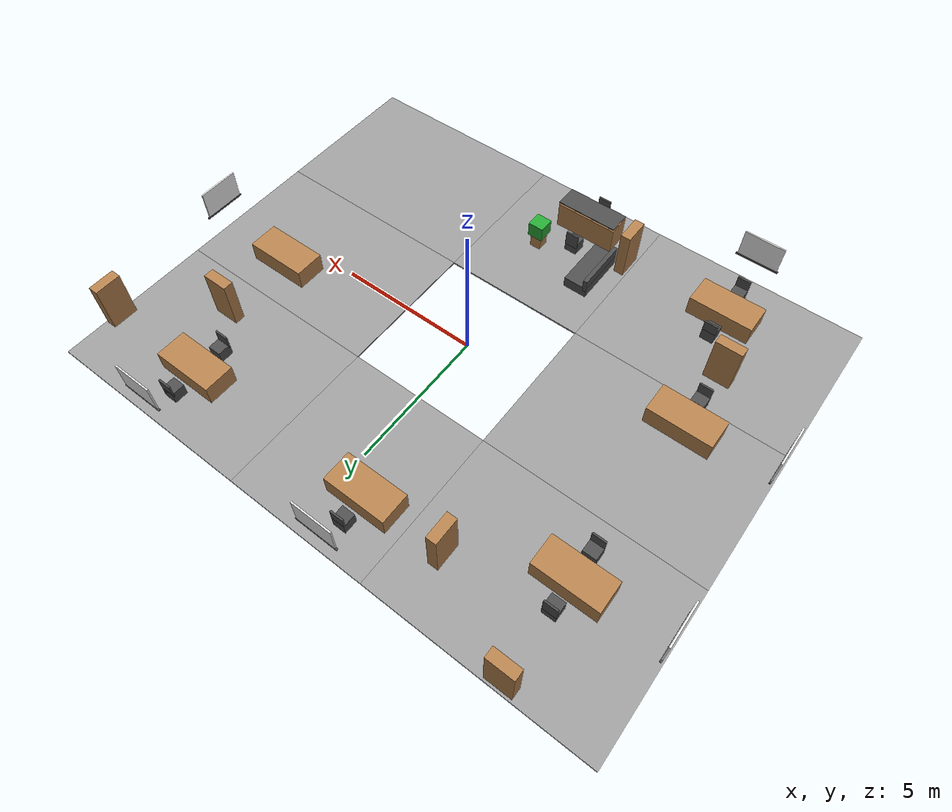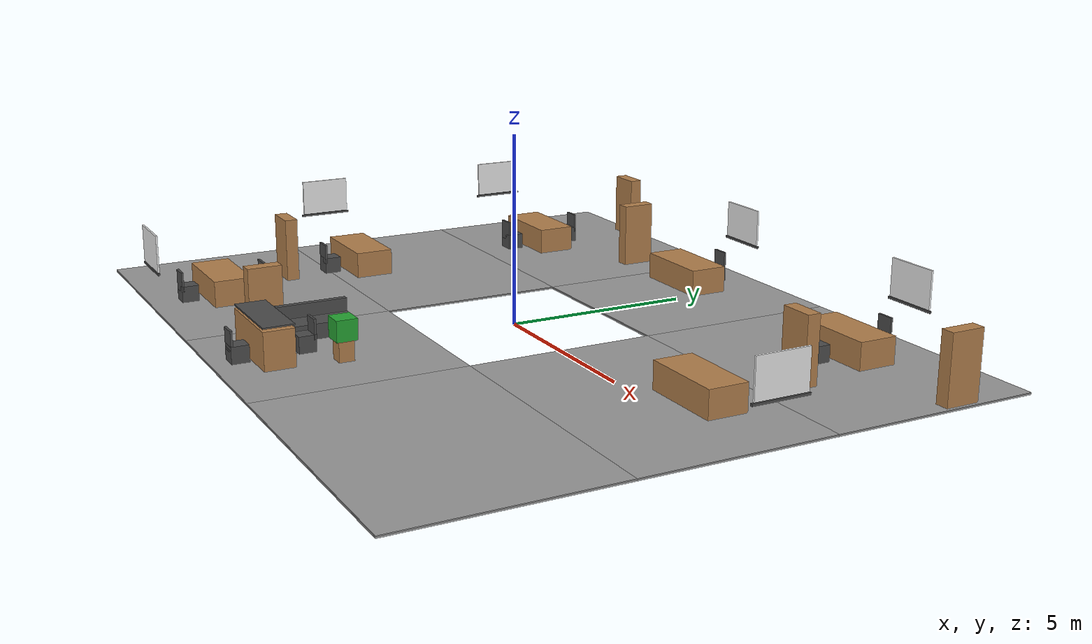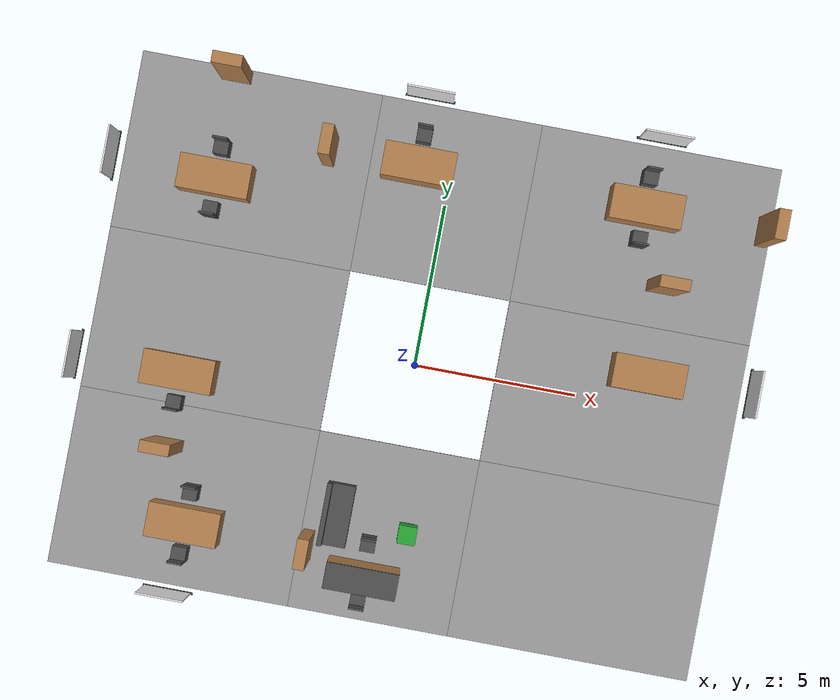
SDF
<sdf version="1.7">
 <world name="default">
  <model name="building_L1">
   <static>1</static>
   <link name="floor0_0">
    <pose>-6.25 -5.25 0 0 0 0</pose>
    <collision name="c"><geometry><box><size>7.5 5.5 0.04</size></box></geometry></collision>
    <visual name="v">
     <geometry><box><size>7.5 5.5 0.04</size></box></geometry>
     <material>
      <script><uri>file://media/materials/scripts/Gazebo.material</uri><name>Gazebo/Grey</name></script>
     </material>
    </visual>
   </link>
   <link name="floor0c_0">
    <pose>-6.25 -5.25 0.03 0 0 0</pose>
    <collision name="c"><geometry><box><size>7.5 5.5 0.02</size></box></geometry></collision>
    <visual name="v">
     <geometry><box><size>7.5 5.5 0.02</size></box></geometry>
     <material>
      <script><uri>file://media/materials/scripts/Gazebo.material</uri><name>Gazebo/Grey</name></script>
     </material>
    </visual>
   </link>
   <link name="floor0_1">
    <pose>-6.25 0 0 0 0 0</pose>
    <collision name="c"><geometry><box><size>7.5 5 0.04</size></box></geometry></collision>
    <visual name="v">
     <geometry><box><size>7.5 5 0.04</size></box></geometry>
     <material>
      <script><uri>file://media/materials/scripts/Gazebo.material</uri><name>Gazebo/Grey</name></script>
     </material>
    </visual>
   </link>
   <link name="floor0c_1">
    <pose>-6.25 0 0.03 0 0 0</pose>
    <collision name="c"><geometry><box><size>7.5 5 0.02</size></box></geometry></collision>
    <visual name="v">
     <geometry><box><size>7.5 5 0.02</size></box></geometry>
     <material>
      <script><uri>file://media/materials/scripts/Gazebo.material</uri><name>Gazebo/Grey</name></script>
     </material>
    </visual>
   </link>
   <link name="floor0_2">
    <pose>-6.25 5.25 0 0 0 0</pose>
    <collision name="c"><geometry><box><size>7.5 5.5 0.04</size></box></geometry></collision>
    <visual name="v">
     <geometry><box><size>7.5 5.5 0.04</size></box></geometry>
     <material>
      <script><uri>file://media/materials/scripts/Gazebo.material</uri><name>Gazebo/Grey</name></script>
     </material>
    </visual>
   </link>
   <link name="floor0c_2">
    <pose>-6.25 5.25 0.03 0 0 0</pose>
    <collision name="c"><geometry><box><size>7.5 5.5 0.02</size></box></geometry></collision>
    <visual name="v">
     <geometry><box><size>7.5 5.5 0.02</size></box></geometry>
     <material>
      <script><uri>file://media/materials/scripts/Gazebo.material</uri><name>Gazebo/Grey</name></script>
     </material>
    </visual>
   </link>
   <link name="floor0_3">
    <pose>0 -5.25 0 0 0 0</pose>
    <collision name="c"><geometry><box><size>5 5.5 0.04</size></box></geometry></collision>
    <visual name="v">
     <geometry><box><size>5 5.5 0.04</size></box></geometry>
     <material>
      <script><uri>file://media/materials/scripts/Gazebo.material</uri><name>Gazebo/Grey</name></script>
     </material>
    </visual>
   </link>
   <link name="floor0c_3">
    <pose>0 -5.25 0.03 0 0 0</pose>
    <collision name="c"><geometry><box><size>5 5.5 0.02</size></box></geometry></collision>
    <visual name="v">
     <geometry><box><size>5 5.5 0.02</size></box></geometry>
     <material>
      <script><uri>file://media/materials/scripts/Gazebo.material</uri><name>Gazebo/Grey</name></script>
     </material>
    </visual>
   </link>
   <link name="floor0_4">
    <pose>0 5.25 0 0 0 0</pose>
    <collision name="c"><geometry><box><size>5 5.5 0.04</size></box></geometry></collision>
    <visual name="v">
     <geometry><box><size>5 5.5 0.04</size></box></geometry>
     <material>
      <script><uri>file://media/materials/scripts/Gazebo.material</uri><name>Gazebo/Grey</name></script>
     </material>
    </visual>
   </link>
   <link name="floor0c_4">
    <pose>0 5.25 0.03 0 0 0</pose>
    <collision name="c"><geometry><box><size>5 5.5 0.02</size></box></geometry></collision>
    <visual name="v">
     <geometry><box><size>5 5.5 0.02</size></box></geometry>
     <material>
      <script><uri>file://media/materials/scripts/Gazebo.material</uri><name>Gazebo/Grey</name></script>
     </material>
    </visual>
   </link>
   <link name="floor0_5">
    <pose>6.25 -5.25 0 0 0 0</pose>
    <collision name="c"><geometry><box><size>7.5 5.5 0.04</size></box></geometry></collision>
    <visual name="v">
     <geometry><box><size>7.5 5.5 0.04</size></box></geometry>
     <material>
      <script><uri>file://media/materials/scripts/Gazebo.material</uri><name>Gazebo/Grey</name></script>
     </material>
    </visual>
   </link>
   <link name="floor0c_5">
    <pose>6.25 -5.25 0.03 0 0 0</pose>
    <collision name="c"><geometry><box><size>7.5 5.5 0.02</size></box></geometry></collision>
    <visual name="v">
     <geometry><box><size>7.5 5.5 0.02</size></box></geometry>
     <material>
      <script><uri>file://media/materials/scripts/Gazebo.material</uri><name>Gazebo/Grey</name></script>
     </material>
    </visual>
   </link>
   <link name="floor0_6">
    <pose>6.25 0 0 0 0 0</pose>
    <collision name="c"><geometry><box><size>7.5 5 0.04</size></box></geometry></collision>
    <visual name="v">
     <geometry><box><size>7.5 5 0.04</size></box></geometry>
     <material>
      <script><uri>file://media/materials/scripts/Gazebo.material</uri><name>Gazebo/Grey</name></script>
     </material>
    </visual>
   </link>
   <link name="floor0c_6">
    <pose>6.25 0 0.03 0 0 0</pose>
    <collision name="c"><geometry><box><size>7.5 5 0.02</size></box></geometry></collision>
    <visual name="v">
     <geometry><box><size>7.5 5 0.02</size></box></geometry>
     <material>
      <script><uri>file://media/materials/scripts/Gazebo.material</uri><name>Gazebo/Grey</name></script>
     </material>
    </visual>
   </link>
   <link name="floor0_7">
    <pose>6.25 5.25 0 0 0 0</pose>
    <collision name="c"><geometry><box><size>7.5 5.5 0.04</size></box></geometry></collision>
    <visual name="v">
     <geometry><box><size>7.5 5.5 0.04</size></box></geometry>
     <material>
      <script><uri>file://media/materials/scripts/Gazebo.material</uri><name>Gazebo/Grey</name></script>
     </material>
    </visual>
   </link>
   <link name="floor0c_7">
    <pose>6.25 5.25 0.03 0 0 0</pose>
    <collision name="c"><geometry><box><size>7.5 5.5 0.02</size></box></geometry></collision>
    <visual name="v">
     <geometry><box><size>7.5 5.5 0.02</size></box></geometry>
     <material>
      <script><uri>file://media/materials/scripts/Gazebo.material</uri><name>Gazebo/Grey</name></script>
     </material>
    </visual>
   </link>
   <link name="f0_N1mtt">
    <pose>-1 6 0.38 0 0 0</pose>
    <collision name="c"><geometry><box><size>2.2 1.05 0.76</size></box></geometry></collision>
    <visual name="v">
     <geometry><box><size>2.2 1.05 0.76</size></box></geometry>
     <material>
      <script><uri>file://media/materials/scripts/Gazebo.material</uri><name>Gazebo/Wood</name></script>
     </material>
    </visual>
   </link>
   <link name="f0_N1c3s">
    <pose>-1 6.95 0.24 0 0 0</pose>
    <collision name="c"><geometry><box><size>0.46 0.46 0.48</size></box></geometry></collision>
    <visual name="v">
     <geometry><box><size>0.46 0.46 0.48</size></box></geometry>
     <material>
      <script><uri>file://media/materials/scripts/Gazebo.material</uri><name>Gazebo/DarkGrey</name></script>
     </material>
    </visual>
   </link>
   <link name="f0_N1c3b">
    <pose>-1 7.15 0.6 0 0 0</pose>
    <collision name="c"><geometry><box><size>0.46 0.06 0.55</size></box></geometry></collision>
    <visual name="v">
     <geometry><box><size>0.46 0.06 0.55</size></box></geometry>
     <material>
      <script><uri>file://media/materials/scripts/Gazebo.material</uri><name>Gazebo/DarkGrey</name></script>
     </material>
    </visual>
   </link>
   <link name="f0_N1bsf">
    <pose>-3.75 6 0.9 0 0 0</pose>
    <collision name="c"><geometry><box><size>0.35 0.9 1.8</size></box></geometry></collision>
    <visual name="v">
     <geometry><box><size>0.35 0.9 1.8</size></box></geometry>
     <material>
      <script><uri>file://media/materials/scripts/Gazebo.material</uri><name>Gazebo/Wood</name></script>
     </material>
    </visual>
   </link>
   <link name="f0_N1bsb0">
    <pose>-3.75 6 0.45 0 0 0</pose>
    <collision name="c"><geometry><box><size>0.28 0.8 0.32</size></box></geometry></collision>
    <visual name="v">
     <geometry><box><size>0.28 0.8 0.32</size></box></geometry>
     <material>
      <script><uri>file://media/materials/scripts/Gazebo.material</uri><name>Gazebo/Grey</name></script>
     </material>
    </visual>
   </link>
   <link name="f0_N1bsb1">
    <pose>-3.75 6 0.95 0 0 0</pose>
    <collision name="c"><geometry><box><size>0.28 0.8 0.32</size></box></geometry></collision>
    <visual name="v">
     <geometry><box><size>0.28 0.8 0.32</size></box></geometry>
     <material>
      <script><uri>file://media/materials/scripts/Gazebo.material</uri><name>Gazebo/Grey</name></script>
     </material>
    </visual>
   </link>
   <link name="f0_N1bsb2">
    <pose>-3.75 6 1.45 0 0 0</pose>
    <collision name="c"><geometry><box><size>0.28 0.8 0.32</size></box></geometry></collision>
    <visual name="v">
     <geometry><box><size>0.28 0.8 0.32</size></box></geometry>
     <material>
      <script><uri>file://media/materials/scripts/Gazebo.material</uri><name>Gazebo/Grey</name></script>
     </material>
    </visual>
   </link>
   <link name="f0_N1wbw">
    <pose>-1 7.895 1.6 0 0 0</pose>
    <collision name="c"><geometry><box><size>1.4 0.05 1</size></box></geometry></collision>
    <visual name="v">
     <geometry><box><size>1.4 0.05 1</size></box></geometry>
     <material>
      <script><uri>file://media/materials/scripts/Gazebo.material</uri><name>Gazebo/White</name></script>
     </material>
    </visual>
   </link>
   <link name="f0_N1wbf">
    <pose>-1 7.895 1.05 0 0 0</pose>
    <collision name="c"><geometry><box><size>1.5 0.06 0.06</size></box></geometry></collision>
    <visual name="v">
     <geometry><box><size>1.5 0.06 0.06</size></box></geometry>
     <material>
      <script><uri>file://media/materials/scripts/Gazebo.material</uri><name>Gazebo/DarkGrey</name></script>
     </material>
    </visual>
   </link>
   <link name="f0_N2mtt">
    <pose>6 6 0.38 0 0 0</pose>
    <collision name="c"><geometry><box><size>2.2 1.05 0.76</size></box></geometry></collision>
    <visual name="v">
     <geometry><box><size>2.2 1.05 0.76</size></box></geometry>
     <material>
      <script><uri>file://media/materials/scripts/Gazebo.material</uri><name>Gazebo/Wood</name></script>
     </material>
    </visual>
   </link>
   <link name="f0_N2c2s">
    <pose>6 5.05 0.24 0 0 0</pose>
    <collision name="c"><geometry><box><size>0.46 0.46 0.48</size></box></geometry></collision>
    <visual name="v">
     <geometry><box><size>0.46 0.46 0.48</size></box></geometry>
     <material>
      <script><uri>file://media/materials/scripts/Gazebo.material</uri><name>Gazebo/DarkGrey</name></script>
     </material>
    </visual>
   </link>
   <link name="f0_N2c2b">
    <pose>6 4.85 0.6 0 0 0</pose>
    <collision name="c"><geometry><box><size>0.46 0.06 0.55</size></box></geometry></collision>
    <visual name="v">
     <geometry><box><size>0.46 0.06 0.55</size></box></geometry>
     <material>
      <script><uri>file://media/materials/scripts/Gazebo.material</uri><name>Gazebo/DarkGrey</name></script>
     </material>
    </visual>
   </link>
   <link name="f0_N2c3s">
    <pose>6 6.95 0.24 0 0 0</pose>
    <collision name="c"><geometry><box><size>0.46 0.46 0.48</size></box></geometry></collision>
    <visual name="v">
     <geometry><box><size>0.46 0.46 0.48</size></box></geometry>
     <material>
      <script><uri>file://media/materials/scripts/Gazebo.material</uri><name>Gazebo/DarkGrey</name></script>
     </material>
    </visual>
   </link>
   <link name="f0_N2c3b">
    <pose>6 7.15 0.6 0 0 0</pose>
    <collision name="c"><geometry><box><size>0.46 0.06 0.55</size></box></geometry></collision>
    <visual name="v">
     <geometry><box><size>0.46 0.06 0.55</size></box></geometry>
     <material>
      <script><uri>file://media/materials/scripts/Gazebo.material</uri><name>Gazebo/DarkGrey</name></script>
     </material>
    </visual>
   </link>
   <link name="f0_N2bsf">
    <pose>9.75 6 0.9 0 0 0</pose>
    <collision name="c"><geometry><box><size>0.35 0.9 1.8</size></box></geometry></collision>
    <visual name="v">
     <geometry><box><size>0.35 0.9 1.8</size></box></geometry>
     <material>
      <script><uri>file://media/materials/scripts/Gazebo.material</uri><name>Gazebo/Wood</name></script>
     </material>
    </visual>
   </link>
   <link name="f0_N2bsb0">
    <pose>9.75 6 0.45 0 0 0</pose>
    <collision name="c"><geometry><box><size>0.28 0.8 0.32</size></box></geometry></collision>
    <visual name="v">
     <geometry><box><size>0.28 0.8 0.32</size></box></geometry>
     <material>
      <script><uri>file://media/materials/scripts/Gazebo.material</uri><name>Gazebo/Grey</name></script>
     </material>
    </visual>
   </link>
   <link name="f0_N2bsb1">
    <pose>9.75 6 0.95 0 0 0</pose>
    <collision name="c"><geometry><box><size>0.28 0.8 0.32</size></box></geometry></collision>
    <visual name="v">
     <geometry><box><size>0.28 0.8 0.32</size></box></geometry>
     <material>
      <script><uri>file://media/materials/scripts/Gazebo.material</uri><name>Gazebo/Grey</name></script>
     </material>
    </visual>
   </link>
   <link name="f0_N2bsb2">
    <pose>9.75 6 1.45 0 0 0</pose>
    <collision name="c"><geometry><box><size>0.28 0.8 0.32</size></box></geometry></collision>
    <visual name="v">
     <geometry><box><size>0.28 0.8 0.32</size></box></geometry>
     <material>
      <script><uri>file://media/materials/scripts/Gazebo.material</uri><name>Gazebo/Grey</name></script>
     </material>
    </visual>
   </link>
   <link name="f0_N2wbw">
    <pose>6 7.895 1.6 0 0 0</pose>
    <collision name="c"><geometry><box><size>1.4 0.05 1</size></box></geometry></collision>
    <visual name="v">
     <geometry><box><size>1.4 0.05 1</size></box></geometry>
     <material>
      <script><uri>file://media/materials/scripts/Gazebo.material</uri><name>Gazebo/White</name></script>
     </material>
    </visual>
   </link>
   <link name="f0_N2wbf">
    <pose>6 7.895 1.05 0 0 0</pose>
    <collision name="c"><geometry><box><size>1.5 0.06 0.06</size></box></geometry></collision>
    <visual name="v">
     <geometry><box><size>1.5 0.06 0.06</size></box></geometry>
     <material>
      <script><uri>file://media/materials/scripts/Gazebo.material</uri><name>Gazebo/DarkGrey</name></script>
     </material>
    </visual>
   </link>
   <link name="f0_W1mtt">
    <pose>-7 4.5 0.38 0 0 0</pose>
    <collision name="c"><geometry><box><size>2.2 1.05 0.76</size></box></geometry></collision>
    <visual name="v">
     <geometry><box><size>2.2 1.05 0.76</size></box></geometry>
     <material>
      <script><uri>file://media/materials/scripts/Gazebo.material</uri><name>Gazebo/Wood</name></script>
     </material>
    </visual>
   </link>
   <link name="f0_W1c2s">
    <pose>-7 3.55 0.24 0 0 0</pose>
    <collision name="c"><geometry><box><size>0.46 0.46 0.48</size></box></geometry></collision>
    <visual name="v">
     <geometry><box><size>0.46 0.46 0.48</size></box></geometry>
     <material>
      <script><uri>file://media/materials/scripts/Gazebo.material</uri><name>Gazebo/DarkGrey</name></script>
     </material>
    </visual>
   </link>
   <link name="f0_W1c2b">
    <pose>-7 3.35 0.6 0 0 0</pose>
    <collision name="c"><geometry><box><size>0.46 0.06 0.55</size></box></geometry></collision>
    <visual name="v">
     <geometry><box><size>0.46 0.06 0.55</size></box></geometry>
     <material>
      <script><uri>file://media/materials/scripts/Gazebo.material</uri><name>Gazebo/DarkGrey</name></script>
     </material>
    </visual>
   </link>
   <link name="f0_W1c3s">
    <pose>-7 5.45 0.24 0 0 0</pose>
    <collision name="c"><geometry><box><size>0.46 0.46 0.48</size></box></geometry></collision>
    <visual name="v">
     <geometry><box><size>0.46 0.46 0.48</size></box></geometry>
     <material>
      <script><uri>file://media/materials/scripts/Gazebo.material</uri><name>Gazebo/DarkGrey</name></script>
     </material>
    </visual>
   </link>
   <link name="f0_W1c3b">
    <pose>-7 5.65 0.6 0 0 0</pose>
    <collision name="c"><geometry><box><size>0.46 0.06 0.55</size></box></geometry></collision>
    <visual name="v">
     <geometry><box><size>0.46 0.06 0.55</size></box></geometry>
     <material>
      <script><uri>file://media/materials/scripts/Gazebo.material</uri><name>Gazebo/DarkGrey</name></script>
     </material>
    </visual>
   </link>
   <link name="f0_W1bsf">
    <pose>-7 7.75 0.9 0 0 0</pose>
    <collision name="c"><geometry><box><size>0.9 0.35 1.8</size></box></geometry></collision>
    <visual name="v">
     <geometry><box><size>0.9 0.35 1.8</size></box></geometry>
     <material>
      <script><uri>file://media/materials/scripts/Gazebo.material</uri><name>Gazebo/Wood</name></script>
     </material>
    </visual>
   </link>
   <link name="f0_W1bsb0">
    <pose>-7 7.75 0.45 0 0 0</pose>
    <collision name="c"><geometry><box><size>0.8 0.28 0.32</size></box></geometry></collision>
    <visual name="v">
     <geometry><box><size>0.8 0.28 0.32</size></box></geometry>
     <material>
      <script><uri>file://media/materials/scripts/Gazebo.material</uri><name>Gazebo/Grey</name></script>
     </material>
    </visual>
   </link>
   <link name="f0_W1bsb1">
    <pose>-7 7.75 0.95 0 0 0</pose>
    <collision name="c"><geometry><box><size>0.8 0.28 0.32</size></box></geometry></collision>
    <visual name="v">
     <geometry><box><size>0.8 0.28 0.32</size></box></geometry>
     <material>
      <script><uri>file://media/materials/scripts/Gazebo.material</uri><name>Gazebo/Grey</name></script>
     </material>
    </visual>
   </link>
   <link name="f0_W1bsb2">
    <pose>-7 7.75 1.45 0 0 0</pose>
    <collision name="c"><geometry><box><size>0.8 0.28 0.32</size></box></geometry></collision>
    <visual name="v">
     <geometry><box><size>0.8 0.28 0.32</size></box></geometry>
     <material>
      <script><uri>file://media/materials/scripts/Gazebo.material</uri><name>Gazebo/Grey</name></script>
     </material>
    </visual>
   </link>
   <link name="f0_W1wbw">
    <pose>-9.895 4.5 1.6 0 0 0</pose>
    <collision name="c"><geometry><box><size>0.05 1.4 1</size></box></geometry></collision>
    <visual name="v">
     <geometry><box><size>0.05 1.4 1</size></box></geometry>
     <material>
      <script><uri>file://media/materials/scripts/Gazebo.material</uri><name>Gazebo/White</name></script>
     </material>
    </visual>
   </link>
   <link name="f0_W1wbf">
    <pose>-9.895 4.5 1.05 0 0 0</pose>
    <collision name="c"><geometry><box><size>0.06 1.5 0.06</size></box></geometry></collision>
    <visual name="v">
     <geometry><box><size>0.06 1.5 0.06</size></box></geometry>
     <material>
      <script><uri>file://media/materials/scripts/Gazebo.material</uri><name>Gazebo/DarkGrey</name></script>
     </material>
    </visual>
   </link>
   <link name="f0_W2mtt">
    <pose>-7 -1.5 0.38 0 0 0</pose>
    <collision name="c"><geometry><box><size>2.2 1.05 0.76</size></box></geometry></collision>
    <visual name="v">
     <geometry><box><size>2.2 1.05 0.76</size></box></geometry>
     <material>
      <script><uri>file://media/materials/scripts/Gazebo.material</uri><name>Gazebo/Wood</name></script>
     </material>
    </visual>
   </link>
   <link name="f0_W2c2s">
    <pose>-7 -2.45 0.24 0 0 0</pose>
    <collision name="c"><geometry><box><size>0.46 0.46 0.48</size></box></geometry></collision>
    <visual name="v">
     <geometry><box><size>0.46 0.46 0.48</size></box></geometry>
     <material>
      <script><uri>file://media/materials/scripts/Gazebo.material</uri><name>Gazebo/DarkGrey</name></script>
     </material>
    </visual>
   </link>
   <link name="f0_W2c2b">
    <pose>-7 -2.65 0.6 0 0 0</pose>
    <collision name="c"><geometry><box><size>0.46 0.06 0.55</size></box></geometry></collision>
    <visual name="v">
     <geometry><box><size>0.46 0.06 0.55</size></box></geometry>
     <material>
      <script><uri>file://media/materials/scripts/Gazebo.material</uri><name>Gazebo/DarkGrey</name></script>
     </material>
    </visual>
   </link>
   <link name="f0_W2bsf">
    <pose>-7 -3.75 0.9 0 0 0</pose>
    <collision name="c"><geometry><box><size>0.9 0.35 1.8</size></box></geometry></collision>
    <visual name="v">
     <geometry><box><size>0.9 0.35 1.8</size></box></geometry>
     <material>
      <script><uri>file://media/materials/scripts/Gazebo.material</uri><name>Gazebo/Wood</name></script>
     </material>
    </visual>
   </link>
   <link name="f0_W2bsb0">
    <pose>-7 -3.75 0.45 0 0 0</pose>
    <collision name="c"><geometry><box><size>0.8 0.28 0.32</size></box></geometry></collision>
    <visual name="v">
     <geometry><box><size>0.8 0.28 0.32</size></box></geometry>
     <material>
      <script><uri>file://media/materials/scripts/Gazebo.material</uri><name>Gazebo/Grey</name></script>
     </material>
    </visual>
   </link>
   <link name="f0_W2bsb1">
    <pose>-7 -3.75 0.95 0 0 0</pose>
    <collision name="c"><geometry><box><size>0.8 0.28 0.32</size></box></geometry></collision>
    <visual name="v">
     <geometry><box><size>0.8 0.28 0.32</size></box></geometry>
     <material>
      <script><uri>file://media/materials/scripts/Gazebo.material</uri><name>Gazebo/Grey</name></script>
     </material>
    </visual>
   </link>
   <link name="f0_W2bsb2">
    <pose>-7 -3.75 1.45 0 0 0</pose>
    <collision name="c"><geometry><box><size>0.8 0.28 0.32</size></box></geometry></collision>
    <visual name="v">
     <geometry><box><size>0.8 0.28 0.32</size></box></geometry>
     <material>
      <script><uri>file://media/materials/scripts/Gazebo.material</uri><name>Gazebo/Grey</name></script>
     </material>
    </visual>
   </link>
   <link name="f0_W2wbw">
    <pose>-9.895 -1.5 1.6 0 0 0</pose>
    <collision name="c"><geometry><box><size>0.05 1.4 1</size></box></geometry></collision>
    <visual name="v">
     <geometry><box><size>0.05 1.4 1</size></box></geometry>
     <material>
      <script><uri>file://media/materials/scripts/Gazebo.material</uri><name>Gazebo/White</name></script>
     </material>
    </visual>
   </link>
   <link name="f0_W2wbf">
    <pose>-9.895 -1.5 1.05 0 0 0</pose>
    <collision name="c"><geometry><box><size>0.06 1.5 0.06</size></box></geometry></collision>
    <visual name="v">
     <geometry><box><size>0.06 1.5 0.06</size></box></geometry>
     <material>
      <script><uri>file://media/materials/scripts/Gazebo.material</uri><name>Gazebo/DarkGrey</name></script>
     </material>
    </visual>
   </link>
   <link name="f0_S1mtt">
    <pose>-6 -6 0.38 0 0 0</pose>
    <collision name="c"><geometry><box><size>2.2 1.05 0.76</size></box></geometry></collision>
    <visual name="v">
     <geometry><box><size>2.2 1.05 0.76</size></box></geometry>
     <material>
      <script><uri>file://media/materials/scripts/Gazebo.material</uri><name>Gazebo/Wood</name></script>
     </material>
    </visual>
   </link>
   <link name="f0_S1c2s">
    <pose>-6 -6.95 0.24 0 0 0</pose>
    <collision name="c"><geometry><box><size>0.46 0.46 0.48</size></box></geometry></collision>
    <visual name="v">
     <geometry><box><size>0.46 0.46 0.48</size></box></geometry>
     <material>
      <script><uri>file://media/materials/scripts/Gazebo.material</uri><name>Gazebo/DarkGrey</name></script>
     </material>
    </visual>
   </link>
   <link name="f0_S1c2b">
    <pose>-6 -7.15 0.6 0 0 0</pose>
    <collision name="c"><geometry><box><size>0.46 0.06 0.55</size></box></geometry></collision>
    <visual name="v">
     <geometry><box><size>0.46 0.06 0.55</size></box></geometry>
     <material>
      <script><uri>file://media/materials/scripts/Gazebo.material</uri><name>Gazebo/DarkGrey</name></script>
     </material>
    </visual>
   </link>
   <link name="f0_S1c3s">
    <pose>-6 -5.05 0.24 0 0 0</pose>
    <collision name="c"><geometry><box><size>0.46 0.46 0.48</size></box></geometry></collision>
    <visual name="v">
     <geometry><box><size>0.46 0.46 0.48</size></box></geometry>
     <material>
      <script><uri>file://media/materials/scripts/Gazebo.material</uri><name>Gazebo/DarkGrey</name></script>
     </material>
    </visual>
   </link>
   <link name="f0_S1c3b">
    <pose>-6 -4.85 0.6 0 0 0</pose>
    <collision name="c"><geometry><box><size>0.46 0.06 0.55</size></box></geometry></collision>
    <visual name="v">
     <geometry><box><size>0.46 0.06 0.55</size></box></geometry>
     <material>
      <script><uri>file://media/materials/scripts/Gazebo.material</uri><name>Gazebo/DarkGrey</name></script>
     </material>
    </visual>
   </link>
   <link name="f0_S1bsf">
    <pose>-2.25 -6 0.9 0 0 0</pose>
    <collision name="c"><geometry><box><size>0.35 0.9 1.8</size></box></geometry></collision>
    <visual name="v">
     <geometry><box><size>0.35 0.9 1.8</size></box></geometry>
     <material>
      <script><uri>file://media/materials/scripts/Gazebo.material</uri><name>Gazebo/Wood</name></script>
     </material>
    </visual>
   </link>
   <link name="f0_S1bsb0">
    <pose>-2.25 -6 0.45 0 0 0</pose>
    <collision name="c"><geometry><box><size>0.28 0.8 0.32</size></box></geometry></collision>
    <visual name="v">
     <geometry><box><size>0.28 0.8 0.32</size></box></geometry>
     <material>
      <script><uri>file://media/materials/scripts/Gazebo.material</uri><name>Gazebo/Grey</name></script>
     </material>
    </visual>
   </link>
   <link name="f0_S1bsb1">
    <pose>-2.25 -6 0.95 0 0 0</pose>
    <collision name="c"><geometry><box><size>0.28 0.8 0.32</size></box></geometry></collision>
    <visual name="v">
     <geometry><box><size>0.28 0.8 0.32</size></box></geometry>
     <material>
      <script><uri>file://media/materials/scripts/Gazebo.material</uri><name>Gazebo/Grey</name></script>
     </material>
    </visual>
   </link>
   <link name="f0_S1bsb2">
    <pose>-2.25 -6 1.45 0 0 0</pose>
    <collision name="c"><geometry><box><size>0.28 0.8 0.32</size></box></geometry></collision>
    <visual name="v">
     <geometry><box><size>0.28 0.8 0.32</size></box></geometry>
     <material>
      <script><uri>file://media/materials/scripts/Gazebo.material</uri><name>Gazebo/Grey</name></script>
     </material>
    </visual>
   </link>
   <link name="f0_S1wbw">
    <pose>-6 -7.895 1.6 0 0 0</pose>
    <collision name="c"><geometry><box><size>1.4 0.05 1</size></box></geometry></collision>
    <visual name="v">
     <geometry><box><size>1.4 0.05 1</size></box></geometry>
     <material>
      <script><uri>file://media/materials/scripts/Gazebo.material</uri><name>Gazebo/White</name></script>
     </material>
    </visual>
   </link>
   <link name="f0_S1wbf">
    <pose>-6 -7.895 1.05 0 0 0</pose>
    <collision name="c"><geometry><box><size>1.5 0.06 0.06</size></box></geometry></collision>
    <visual name="v">
     <geometry><box><size>1.5 0.06 0.06</size></box></geometry>
     <material>
      <script><uri>file://media/materials/scripts/Gazebo.material</uri><name>Gazebo/DarkGrey</name></script>
     </material>
    </visual>
   </link>
   <link name="f0_E1mtt">
    <pose>7 1 0.38 0 0 0</pose>
    <collision name="c"><geometry><box><size>2.2 1.05 0.76</size></box></geometry></collision>
    <visual name="v">
     <geometry><box><size>2.2 1.05 0.76</size></box></geometry>
     <material>
      <script><uri>file://media/materials/scripts/Gazebo.material</uri><name>Gazebo/Wood</name></script>
     </material>
    </visual>
   </link>
   <link name="f0_E1bsf">
    <pose>7 3.75 0.9 0 0 0</pose>
    <collision name="c"><geometry><box><size>0.9 0.35 1.8</size></box></geometry></collision>
    <visual name="v">
     <geometry><box><size>0.9 0.35 1.8</size></box></geometry>
     <material>
      <script><uri>file://media/materials/scripts/Gazebo.material</uri><name>Gazebo/Wood</name></script>
     </material>
    </visual>
   </link>
   <link name="f0_E1bsb0">
    <pose>7 3.75 0.45 0 0 0</pose>
    <collision name="c"><geometry><box><size>0.8 0.28 0.32</size></box></geometry></collision>
    <visual name="v">
     <geometry><box><size>0.8 0.28 0.32</size></box></geometry>
     <material>
      <script><uri>file://media/materials/scripts/Gazebo.material</uri><name>Gazebo/Grey</name></script>
     </material>
    </visual>
   </link>
   <link name="f0_E1bsb1">
    <pose>7 3.75 0.95 0 0 0</pose>
    <collision name="c"><geometry><box><size>0.8 0.28 0.32</size></box></geometry></collision>
    <visual name="v">
     <geometry><box><size>0.8 0.28 0.32</size></box></geometry>
     <material>
      <script><uri>file://media/materials/scripts/Gazebo.material</uri><name>Gazebo/Grey</name></script>
     </material>
    </visual>
   </link>
   <link name="f0_E1bsb2">
    <pose>7 3.75 1.45 0 0 0</pose>
    <collision name="c"><geometry><box><size>0.8 0.28 0.32</size></box></geometry></collision>
    <visual name="v">
     <geometry><box><size>0.8 0.28 0.32</size></box></geometry>
     <material>
      <script><uri>file://media/materials/scripts/Gazebo.material</uri><name>Gazebo/Grey</name></script>
     </material>
    </visual>
   </link>
   <link name="f0_E1wbw">
    <pose>9.895 1 1.6 0 0 0</pose>
    <collision name="c"><geometry><box><size>0.05 1.4 1</size></box></geometry></collision>
    <visual name="v">
     <geometry><box><size>0.05 1.4 1</size></box></geometry>
     <material>
      <script><uri>file://media/materials/scripts/Gazebo.material</uri><name>Gazebo/White</name></script>
     </material>
    </visual>
   </link>
   <link name="f0_E1wbf">
    <pose>9.895 1 1.05 0 0 0</pose>
    <collision name="c"><geometry><box><size>0.06 1.5 0.06</size></box></geometry></collision>
    <visual name="v">
     <geometry><box><size>0.06 1.5 0.06</size></box></geometry>
     <material>
      <script><uri>file://media/materials/scripts/Gazebo.material</uri><name>Gazebo/DarkGrey</name></script>
     </material>
    </visual>
   </link>
   <link name="reception">
    <pose>-0.4 -6.6 0.5 0 0 0</pose>
    <collision name="c"><geometry><box><size>2.2 0.8 1.05</size></box></geometry></collision>
    <visual name="v">
     <geometry><box><size>2.2 0.8 1.05</size></box></geometry>
     <material>
      <script><uri>file://media/materials/scripts/Gazebo.material</uri><name>Gazebo/Wood</name></script>
     </material>
    </visual>
   </link>
   <link name="recdesk_t">
    <pose>-0.4 -6.6 1.11 0 0 0</pose>
    <collision name="c"><geometry><box><size>2.2 0.8 0.04</size></box></geometry></collision>
    <visual name="v">
     <geometry><box><size>2.2 0.8 0.04</size></box></geometry>
     <material>
      <script><uri>file://media/materials/scripts/Gazebo.material</uri><name>Gazebo/DarkGrey</name></script>
     </material>
    </visual>
   </link>
   <link name="recchs">
    <pose>-0.4 -7.3 0.24 0 0 0</pose>
    <collision name="c"><geometry><box><size>0.46 0.46 0.48</size></box></geometry></collision>
    <visual name="v">
     <geometry><box><size>0.46 0.46 0.48</size></box></geometry>
     <material>
      <script><uri>file://media/materials/scripts/Gazebo.material</uri><name>Gazebo/DarkGrey</name></script>
     </material>
    </visual>
   </link>
   <link name="recchb">
    <pose>-0.4 -7.5 0.6 0 0 0</pose>
    <collision name="c"><geometry><box><size>0.46 0.06 0.55</size></box></geometry></collision>
    <visual name="v">
     <geometry><box><size>0.46 0.06 0.55</size></box></geometry>
     <material>
      <script><uri>file://media/materials/scripts/Gazebo.material</uri><name>Gazebo/DarkGrey</name></script>
     </material>
    </visual>
   </link>
   <link name="lsofaWs">
    <pose>-1.5 -4.9 0.25 0 0 0</pose>
    <collision name="c"><geometry><box><size>0.85 1.9 0.4</size></box></geometry></collision>
    <visual name="v">
     <geometry><box><size>0.85 1.9 0.4</size></box></geometry>
     <material>
      <script><uri>file://media/materials/scripts/Gazebo.material</uri><name>Gazebo/DarkGrey</name></script>
     </material>
    </visual>
   </link>
   <link name="lsofaWb">
    <pose>-1.85 -4.9 0.55 0 0 0</pose>
    <collision name="c"><geometry><box><size>0.15 1.9 0.5</size></box></geometry></collision>
    <visual name="v">
     <geometry><box><size>0.15 1.9 0.5</size></box></geometry>
     <material>
      <script><uri>file://media/materials/scripts/Gazebo.material</uri><name>Gazebo/DarkGrey</name></script>
     </material>
    </visual>
   </link>
   <link name="lpWp">
    <pose>0.7 -5 0.3 0 0 0</pose>
    <collision name="c"><geometry><box><size>0.4 0.4 0.6</size></box></geometry></collision>
    <visual name="v">
     <geometry><box><size>0.4 0.4 0.6</size></box></geometry>
     <material>
      <script><uri>file://media/materials/scripts/Gazebo.material</uri><name>Gazebo/Wood</name></script>
     </material>
    </visual>
   </link>
   <link name="lpWg">
    <pose>0.7 -5 0.85 0 0 0</pose>
    <collision name="c"><geometry><box><size>0.55 0.55 0.55</size></box></geometry></collision>
    <visual name="v">
     <geometry><box><size>0.55 0.55 0.55</size></box></geometry>
     <material>
      <script><uri>file://media/materials/scripts/Gazebo.material</uri><name>Gazebo/Green</name></script>
     </material>
    </visual>
   </link>
   <link name="lch2s">
    <pose>-0.4 -5.6 0.24 0 0 0</pose>
    <collision name="c"><geometry><box><size>0.46 0.46 0.48</size></box></geometry></collision>
    <visual name="v">
     <geometry><box><size>0.46 0.46 0.48</size></box></geometry>
     <material>
      <script><uri>file://media/materials/scripts/Gazebo.material</uri><name>Gazebo/DarkGrey</name></script>
     </material>
    </visual>
   </link>
   <link name="lch2b">
    <pose>-0.4 -5.4 0.6 0 0 0</pose>
    <collision name="c"><geometry><box><size>0.46 0.06 0.55</size></box></geometry></collision>
    <visual name="v">
     <geometry><box><size>0.46 0.06 0.55</size></box></geometry>
     <material>
      <script><uri>file://media/materials/scripts/Gazebo.material</uri><name>Gazebo/DarkGrey</name></script>
     </material>
    </visual>
   </link>
  </model>
 </world>
</sdf>
